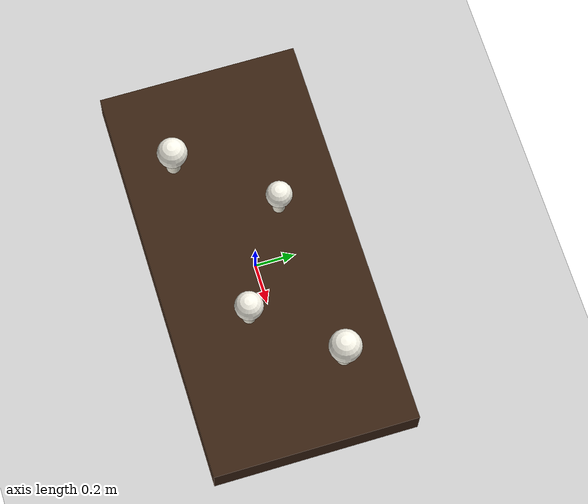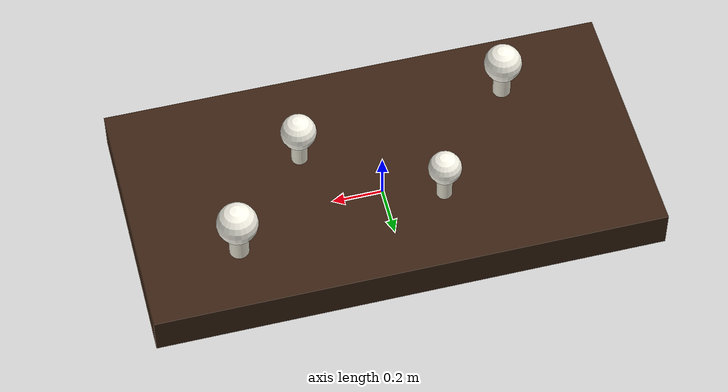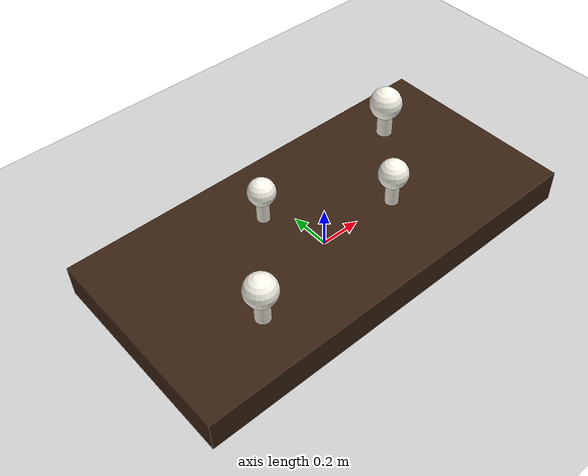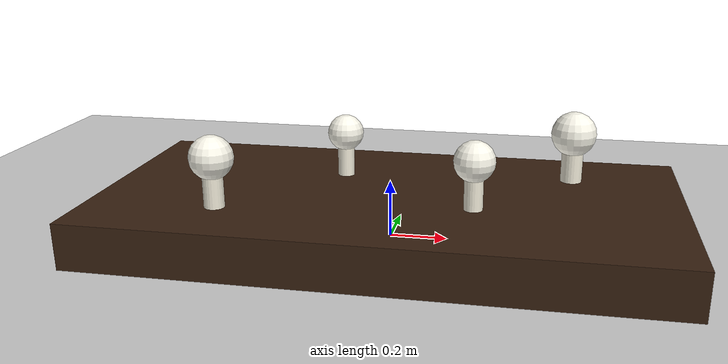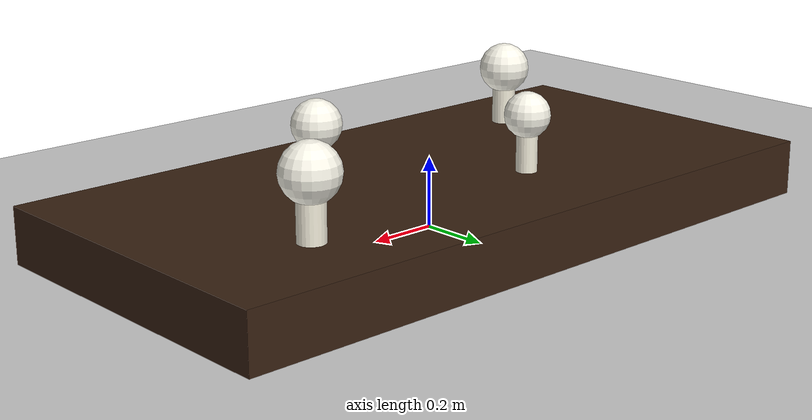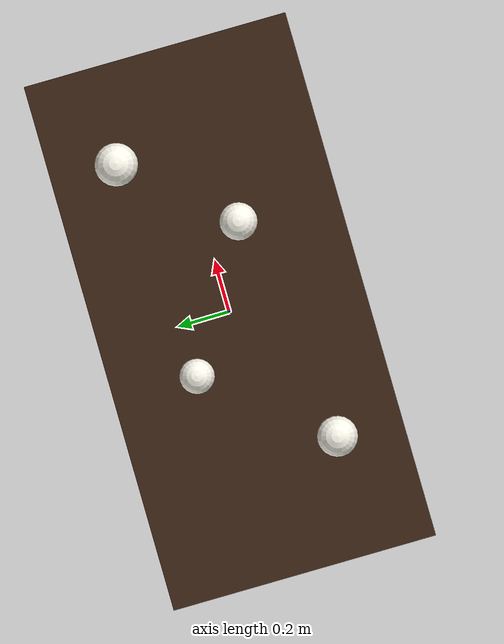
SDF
<?xml version="1.0" ?>
<sdf version="1.6">
  <world name="mushroom_field_world">

    <include>
      <uri>model://sun</uri>
    </include>

    <include>
      <uri>model://ground_plane</uri>
    </include>

    <model name="planting_bed">
      <static>true</static>
      <pose>0 0 0.08 0 0 0</pose>
      <link name="bed_link">
        <visual name="bed_visual">
          <geometry>
            <box>
              <size>2.0 1.0 0.16</size>
            </box>
          </geometry>
          <material>
            <ambient>0.18 0.11 0.06 1</ambient>
            <diffuse>0.22 0.13 0.07 1</diffuse>
          </material>
        </visual>
        <collision name="bed_collision">
          <geometry>
            <box>
              <size>2.0 1.0 0.16</size>
            </box>
          </geometry>
        </collision>
      </link>
    </model>

    <model name="mushroom_1">
      <static>true</static>
      <pose>-0.55 -0.25 0.23 0 0 0</pose>
      <link name="stem_link">
        <visual name="stem_visual">
          <geometry>
            <cylinder>
              <radius>0.035</radius>
              <length>0.16</length>
            </cylinder>
          </geometry>
          <material>
            <ambient>0.95 0.93 0.86 1</ambient>
            <diffuse>0.95 0.93 0.86 1</diffuse>
          </material>
        </visual>
      </link>
      <link name="cap_link">
        <pose>0 0 0.10 0 0 0</pose>
        <visual name="cap_visual">
          <geometry>
            <sphere>
              <radius>0.075</radius>
            </sphere>
          </geometry>
          <scale>1 1 0.45</scale>
          <material>
            <ambient>0.98 0.97 0.92 1</ambient>
            <diffuse>0.98 0.97 0.92 1</diffuse>
          </material>
        </visual>
      </link>
    </model>

    <model name="mushroom_2">
      <static>true</static>
      <pose>-0.20 0.18 0.23 0 0 0</pose>
      <link name="stem_link">
        <visual name="stem_visual">
          <geometry>
            <cylinder>
              <radius>0.03</radius>
              <length>0.14</length>
            </cylinder>
          </geometry>
          <material>
            <ambient>0.95 0.93 0.86 1</ambient>
            <diffuse>0.95 0.93 0.86 1</diffuse>
          </material>
        </visual>
      </link>
      <link name="cap_link">
        <pose>0 0 0.09 0 0 0</pose>
        <visual name="cap_visual">
          <geometry>
            <sphere>
              <radius>0.065</radius>
            </sphere>
          </geometry>
          <scale>1 1 0.45</scale>
          <material>
            <ambient>0.98 0.97 0.92 1</ambient>
            <diffuse>0.98 0.97 0.92 1</diffuse>
          </material>
        </visual>
      </link>
    </model>

    <model name="mushroom_3">
      <static>true</static>
      <pose>0.30 -0.12 0.23 0 0 0</pose>
      <link name="stem_link">
        <visual name="stem_visual">
          <geometry>
            <cylinder>
              <radius>0.032</radius>
              <length>0.15</length>
            </cylinder>
          </geometry>
          <material>
            <ambient>0.95 0.93 0.86 1</ambient>
            <diffuse>0.95 0.93 0.86 1</diffuse>
          </material>
        </visual>
      </link>
      <link name="cap_link">
        <pose>0 0 0.095 0 0 0</pose>
        <visual name="cap_visual">
          <geometry>
            <sphere>
              <radius>0.07</radius>
            </sphere>
          </geometry>
          <scale>1 1 0.45</scale>
          <material>
            <ambient>0.98 0.97 0.92 1</ambient>
            <diffuse>0.98 0.97 0.92 1</diffuse>
          </material>
        </visual>
      </link>
    </model>

    <model name="mushroom_4">
      <static>true</static>
      <pose>0.62 0.25 0.23 0 0 0</pose>
      <link name="stem_link">
        <visual name="stem_visual">
          <geometry>
            <cylinder>
              <radius>0.038</radius>
              <length>0.17</length>
            </cylinder>
          </geometry>
          <material>
            <ambient>0.95 0.93 0.86 1</ambient>
            <diffuse>0.95 0.93 0.86 1</diffuse>
          </material>
        </visual>
      </link>
      <link name="cap_link">
        <pose>0 0 0.105 0 0 0</pose>
        <visual name="cap_visual">
          <geometry>
            <sphere>
              <radius>0.08</radius>
            </sphere>
          </geometry>
          <scale>1 1 0.45</scale>
          <material>
            <ambient>0.98 0.97 0.92 1</ambient>
            <diffuse>0.98 0.97 0.92 1</diffuse>
          </material>
        </visual>
      </link>
    </model>

    <!-- DAY8: 提供实体位姿读取与更新服务，用于简化抓取跟随。 -->
    <plugin
      name="gazebo_ros_state"
      filename="libgazebo_ros_state.so">
      <ros>
        <namespace>/gazebo</namespace>
      </ros>
      <update_rate>30.0</update_rate>
    </plugin>

  </world>
</sdf>
